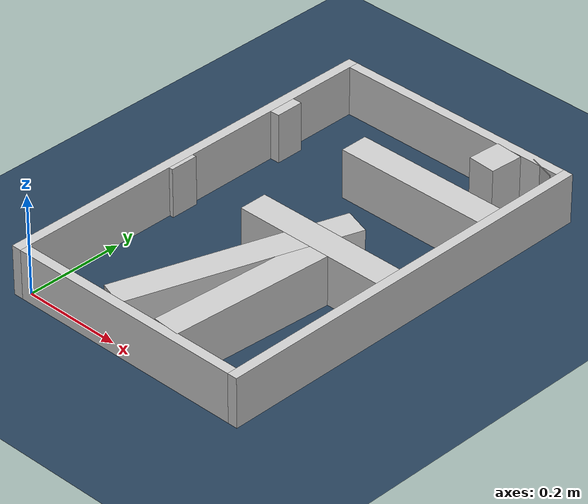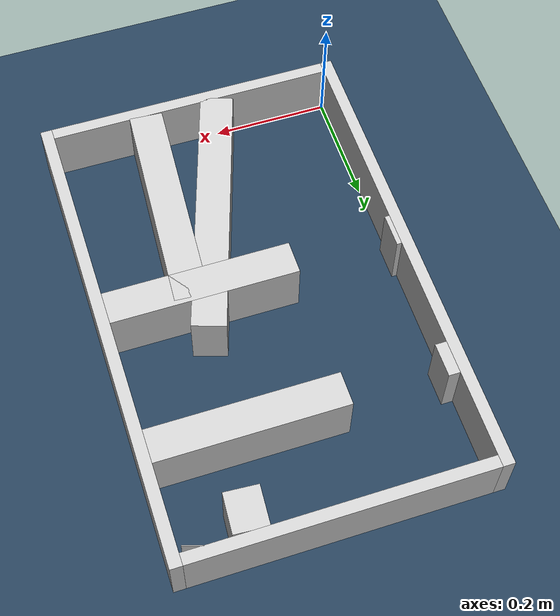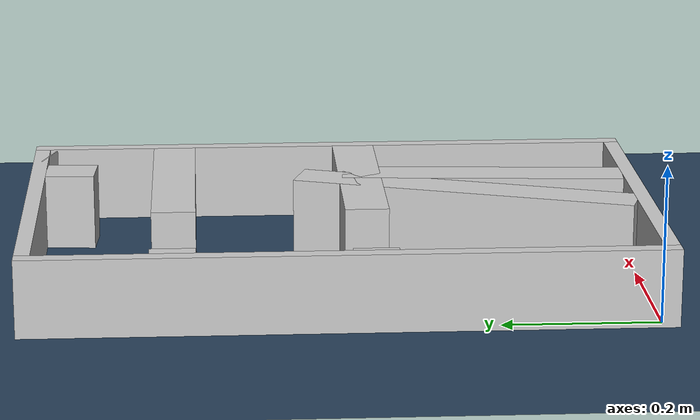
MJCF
<?xml version="1.0" ?>
<mujoco model="generated_real_template">
  <compiler angle="degree"/>
  <option timestep="0.002" integrator="implicitfast" iterations="100" cone="elliptic"/>
  <default>
    <geom density="1"/>
  </default>
  <asset>
    <texture builtin="gradient" height="3072" rgb1="0.3 0.5 0.7" rgb2="0 0 0" type="skybox" width="512"/>
    <texture builtin="checker" height="300" mark="edge" markrgb="0.8 0.8 0.8" name="groundplane" rgb1="0.2 0.3 0.4" rgb2="0.1 0.2 0.3" type="2d" width="300"/>
    <material name="groundplane" reflectance="0.2" texrepeat="5 5" texture="groundplane" texuniform="true"/>
  </asset>
  <worldbody>
    <light dir="0 0 -1" directional="true" pos="0 0 1.5"/>
    <geom name="floor" type="plane" condim="4" friction="0.5 0.005 0.001" material="groundplane" size="0 0 0.05"/>
    <body name="walls">
      <geom name="wall_boundary_left" type="box" condim="4" friction="1.0 0.005 0.0001" rgba="0.8 0.8 0.8 1" pos="-0.010000 0.387500 0.050000" euler="0 0 0.000000" size="0.010000 0.407500 0.050000"/>
      <geom name="wall_boundary_right" type="box" condim="4" friction="1.0 0.005 0.0001" rgba="0.8 0.8 0.8 1" pos="0.500000 0.387500 0.050000" euler="0 0 0.000000" size="0.010000 0.407500 0.050000"/>
      <geom name="wall_boundary_bottom" type="box" condim="4" friction="1.0 0.005 0.0001" rgba="0.8 0.8 0.8 1" pos="0.245000 -0.010000 0.050000" euler="0 0 0.000000" size="0.245000 0.010000 0.050000"/>
      <geom name="wall_boundary_top" type="box" condim="4" friction="1.0 0.005 0.0001" rgba="0.8 0.8 0.8 1" pos="0.245000 0.785000 0.050000" euler="0 0 0.000000" size="0.245000 0.010000 0.050000"/>
      <geom name="wall_inner_1_1" type="box" condim="4" friction="1.0 0.005 0.0001" rgba="0.8 0.8 0.8 1" pos="0.271467 0.217250 0.050000" euler="0 0 71.572945" size="0.228991 0.028500 0.050000"/>
      <geom name="wall_inner_1_2" type="box" condim="4" friction="1.0 0.005 0.0001" rgba="0.8 0.8 0.8 1" pos="0.457052 0.774258 0.050000" euler="0 0 71.572945" size="0.000782 0.028500 0.050000"/>
      <geom name="wall_inner_2_1" type="box" condim="4" friction="1.0 0.005 0.0001" rgba="0.8 0.8 0.8 1" pos="0.004161 0.353904 0.050000" euler="0 0 0.000000" size="0.004161 0.028500 0.050000"/>
      <geom name="wall_inner_2_2" type="box" condim="4" friction="1.0 0.005 0.0001" rgba="0.8 0.8 0.8 1" pos="0.332512 0.353904 0.050000" euler="0 0 0.000000" size="0.157488 0.028500 0.050000"/>
      <geom name="wall_inner_3_1" type="box" condim="4" friction="1.0 0.005 0.0001" rgba="0.8 0.8 0.8 1" pos="0.379470 0.741645 0.050000" euler="0 0 -93.986115" size="0.033436 0.028500 0.050000"/>
      <geom name="wall_inner_3_2" type="box" condim="4" friction="1.0 0.005 0.0001" rgba="0.8 0.8 0.8 1" pos="0.340873 0.187759 0.050000" euler="0 0 -93.986115" size="0.188214 0.028500 0.050000"/>
      <geom name="wall_inner_4_1" type="box" condim="4" friction="1.0 0.005 0.0001" rgba="0.8 0.8 0.8 1" pos="0.009598 0.602649 0.050000" euler="0 0 0.000000" size="0.009598 0.028500 0.050000"/>
      <geom name="wall_inner_4_2" type="box" condim="4" friction="1.0 0.005 0.0001" rgba="0.8 0.8 0.8 1" pos="0.332230 0.602649 0.050000" euler="0 0 0.000000" size="0.157770 0.028500 0.050000"/>
    </body>
  </worldbody>
</mujoco>
